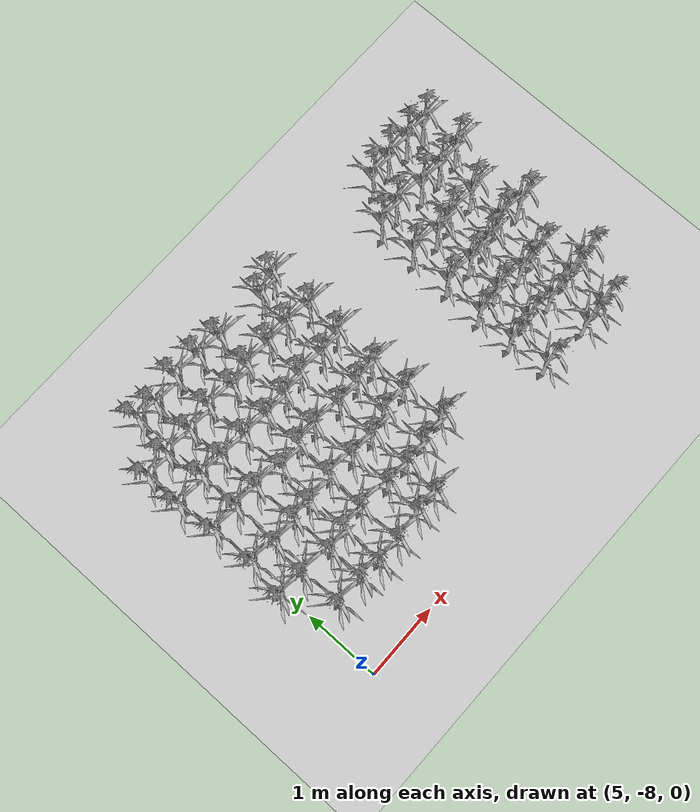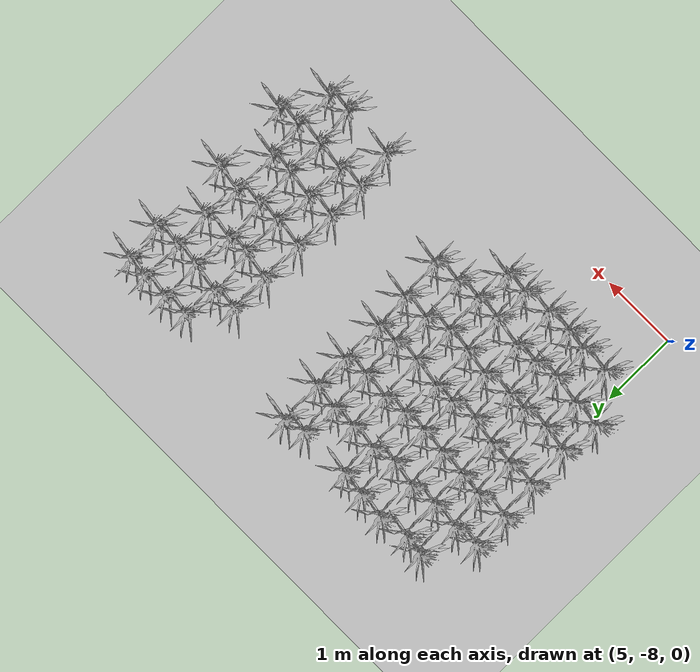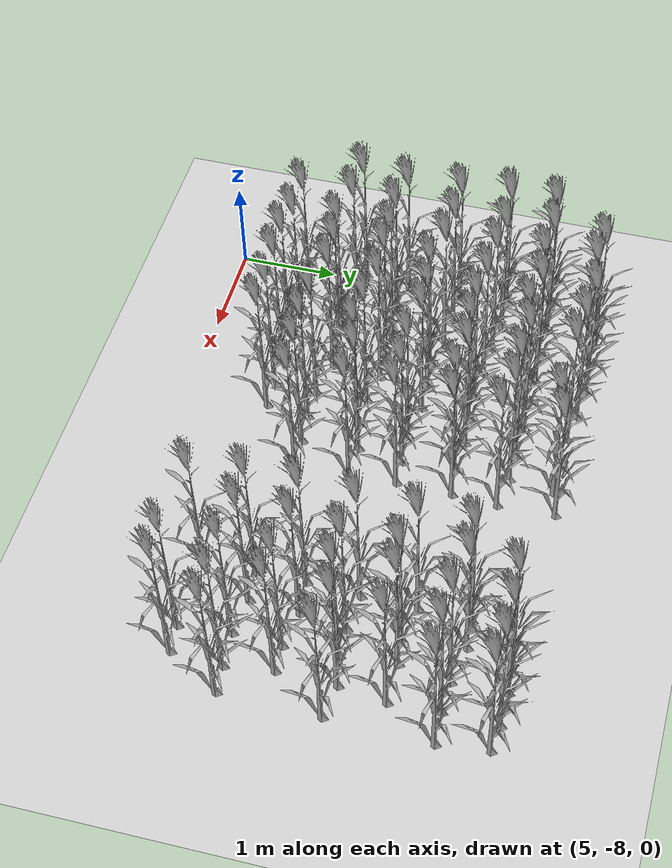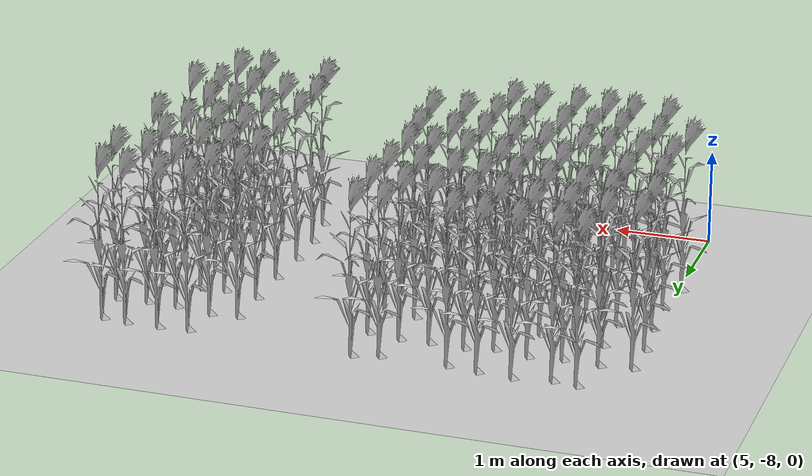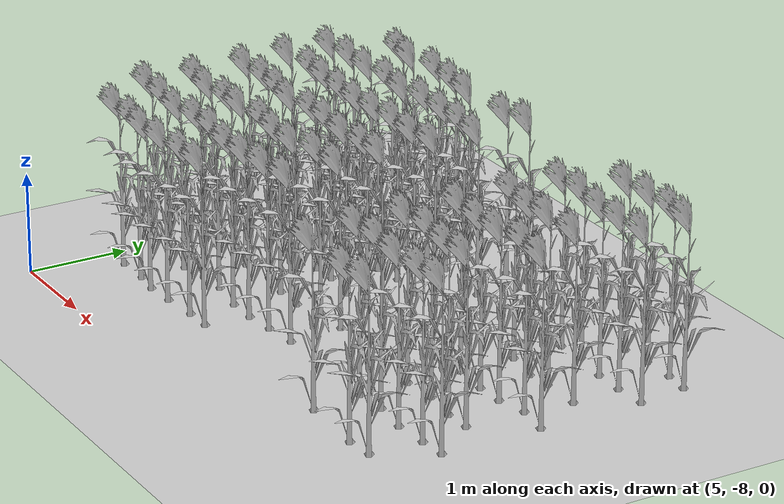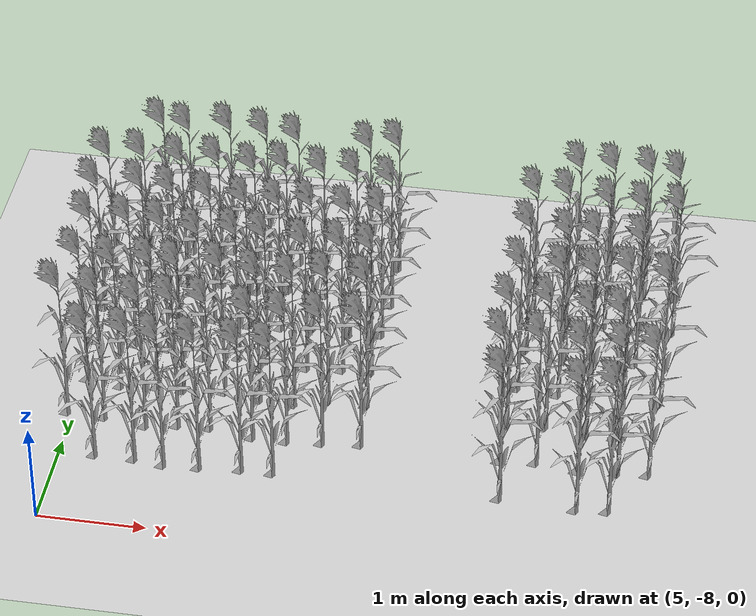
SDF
<sdf version="1.7">
 <world name="farmland_world">
  <model name="ground_plane">
   <static>1</static>
   <link name="link">
    <collision name="collision">
     <geometry><plane><normal>0 0 1</normal><size>40.0 40.0</size></plane></geometry>
     <surface><friction><ode><mu>100</mu><mu2>50</mu2></ode></friction></surface>
    </collision>
    <visual name="visual">
     <cast_shadows>0</cast_shadows>
     <geometry><plane><normal>0 0 1</normal><size>40.0 40.0</size></plane></geometry>
     <material>
      <script><uri>file://media/materials/scripts/gazebo.material</uri><name>Gazebo/Grey</name></script>
     </material>
    </visual>
   </link>
  </model>
  <model name="tree_3_5">
   <static>1</static>
   <link name="link">
    <collision name="collision">
     <geometry><mesh><uri>model://Corn_low_poly/corn.obj</uri><scale>1 1 1</scale></mesh></geometry>
     <surface><friction><ode><mu>100</mu><mu2>50</mu2></ode></friction></surface>
    </collision>
    <visual name="visual">
     <geometry><mesh><uri>model://Corn_low_poly/corn.obj</uri><scale>1 1 1</scale></mesh></geometry>
    </visual>
   </link>
   <pose>4.96478347856773 -4.622246634925939 0 0 0 0</pose>
  </model>
  <model name="tree_3_6">
   <static>1</static>
   <link name="link">
    <collision name="collision">
     <geometry><mesh><uri>model://Corn_low_poly/corn.obj</uri><scale>1 1 1</scale></mesh></geometry>
     <surface><friction><ode><mu>100</mu><mu2>50</mu2></ode></friction></surface>
    </collision>
    <visual name="visual">
     <geometry><mesh><uri>model://Corn_low_poly/corn.obj</uri><scale>1 1 1</scale></mesh></geometry>
    </visual>
   </link>
   <pose>4.961641942109839 -5.090951131364213 0 0 0 0</pose>
  </model>
  <model name="tree_3_7">
   <static>1</static>
   <link name="link">
    <collision name="collision">
     <geometry><mesh><uri>model://Corn_low_poly/corn.obj</uri><scale>1 1 1</scale></mesh></geometry>
     <surface><friction><ode><mu>100</mu><mu2>50</mu2></ode></friction></surface>
    </collision>
    <visual name="visual">
     <geometry><mesh><uri>model://Corn_low_poly/corn.obj</uri><scale>1 1 1</scale></mesh></geometry>
    </visual>
   </link>
   <pose>5.0152718283395235 -5.58843021371626 0 0 0 0</pose>
  </model>
  <model name="tree_3_8">
   <static>1</static>
   <link name="link">
    <collision name="collision">
     <geometry><mesh><uri>model://Corn_low_poly/corn.obj</uri><scale>1 1 1</scale></mesh></geometry>
     <surface><friction><ode><mu>100</mu><mu2>50</mu2></ode></friction></surface>
    </collision>
    <visual name="visual">
     <geometry><mesh><uri>model://Corn_low_poly/corn.obj</uri><scale>1 1 1</scale></mesh></geometry>
    </visual>
   </link>
   <pose>5.041964058183998 -6.136542642182349 0 0 0 0</pose>
  </model>
  <model name="tree_3_9">
   <static>1</static>
   <link name="link">
    <collision name="collision">
     <geometry><mesh><uri>model://Corn_low_poly/corn.obj</uri><scale>1 1 1</scale></mesh></geometry>
     <surface><friction><ode><mu>100</mu><mu2>50</mu2></ode></friction></surface>
    </collision>
    <visual name="visual">
     <geometry><mesh><uri>model://Corn_low_poly/corn.obj</uri><scale>1 1 1</scale></mesh></geometry>
    </visual>
   </link>
   <pose>4.97206561770359 -6.618239836818356 0 0 0 0</pose>
  </model>
  <model name="tree_3_34">
   <static>1</static>
   <link name="link">
    <collision name="collision">
     <geometry><mesh><uri>model://Corn_low_poly/corn.obj</uri><scale>1 1 1</scale></mesh></geometry>
     <surface><friction><ode><mu>100</mu><mu2>50</mu2></ode></friction></surface>
    </collision>
    <visual name="visual">
     <geometry><mesh><uri>model://Corn_low_poly/corn.obj</uri><scale>1 1 1</scale></mesh></geometry>
    </visual>
   </link>
   <pose>5.367690867788337 -4.067806691025668 0 0 0 0</pose>
  </model>
  <model name="tree_3_35">
   <static>1</static>
   <link name="link">
    <collision name="collision">
     <geometry><mesh><uri>model://Corn_low_poly/corn.obj</uri><scale>1 1 1</scale></mesh></geometry>
     <surface><friction><ode><mu>100</mu><mu2>50</mu2></ode></friction></surface>
    </collision>
    <visual name="visual">
     <geometry><mesh><uri>model://Corn_low_poly/corn.obj</uri><scale>1 1 1</scale></mesh></geometry>
    </visual>
   </link>
   <pose>5.2911021994150635 -4.586772521691771 0 0 0 0</pose>
  </model>
  <model name="tree_3_36">
   <static>1</static>
   <link name="link">
    <collision name="collision">
     <geometry><mesh><uri>model://Corn_low_poly/corn.obj</uri><scale>1 1 1</scale></mesh></geometry>
     <surface><friction><ode><mu>100</mu><mu2>50</mu2></ode></friction></surface>
    </collision>
    <visual name="visual">
     <geometry><mesh><uri>model://Corn_low_poly/corn.obj</uri><scale>1 1 1</scale></mesh></geometry>
    </visual>
   </link>
   <pose>5.377014682288951 -5.054176357652684 0 0 0 0</pose>
  </model>
  <model name="tree_3_37">
   <static>1</static>
   <link name="link">
    <collision name="collision">
     <geometry><mesh><uri>model://Corn_low_poly/corn.obj</uri><scale>1 1 1</scale></mesh></geometry>
     <surface><friction><ode><mu>100</mu><mu2>50</mu2></ode></friction></surface>
    </collision>
    <visual name="visual">
     <geometry><mesh><uri>model://Corn_low_poly/corn.obj</uri><scale>1 1 1</scale></mesh></geometry>
    </visual>
   </link>
   <pose>5.372666027742325 -5.576204688433633 0 0 0 0</pose>
  </model>
  <model name="tree_3_38">
   <static>1</static>
   <link name="link">
    <collision name="collision">
     <geometry><mesh><uri>model://Corn_low_poly/corn.obj</uri><scale>1 1 1</scale></mesh></geometry>
     <surface><friction><ode><mu>100</mu><mu2>50</mu2></ode></friction></surface>
    </collision>
    <visual name="visual">
     <geometry><mesh><uri>model://Corn_low_poly/corn.obj</uri><scale>1 1 1</scale></mesh></geometry>
    </visual>
   </link>
   <pose>5.371017712015988 -6.186621657210149 0 0 0 0</pose>
  </model>
  <model name="tree_3_39">
   <static>1</static>
   <link name="link">
    <collision name="collision">
     <geometry><mesh><uri>model://Corn_low_poly/corn.obj</uri><scale>1 1 1</scale></mesh></geometry>
     <surface><friction><ode><mu>100</mu><mu2>50</mu2></ode></friction></surface>
    </collision>
    <visual name="visual">
     <geometry><mesh><uri>model://Corn_low_poly/corn.obj</uri><scale>1 1 1</scale></mesh></geometry>
    </visual>
   </link>
   <pose>5.322694249160785 -6.636999667376503 0 0 0 0</pose>
  </model>
  <model name="tree_3_40">
   <static>1</static>
   <link name="link">
    <collision name="collision">
     <geometry><mesh><uri>model://Corn_low_poly/corn.obj</uri><scale>1 1 1</scale></mesh></geometry>
     <surface><friction><ode><mu>100</mu><mu2>50</mu2></ode></friction></surface>
    </collision>
    <visual name="visual">
     <geometry><mesh><uri>model://Corn_low_poly/corn.obj</uri><scale>1 1 1</scale></mesh></geometry>
    </visual>
   </link>
   <pose>5.351561187208787 -7.151336102312782 0 0 0 0</pose>
  </model>
  <model name="tree_3_64">
   <static>1</static>
   <link name="link">
    <collision name="collision">
     <geometry><mesh><uri>model://Corn_low_poly/corn.obj</uri><scale>1 1 1</scale></mesh></geometry>
     <surface><friction><ode><mu>100</mu><mu2>50</mu2></ode></friction></surface>
    </collision>
    <visual name="visual">
     <geometry><mesh><uri>model://Corn_low_poly/corn.obj</uri><scale>1 1 1</scale></mesh></geometry>
    </visual>
   </link>
   <pose>5.620712537641283 -4.104439684190353 0 0 0 0</pose>
  </model>
  <model name="tree_3_65">
   <static>1</static>
   <link name="link">
    <collision name="collision">
     <geometry><mesh><uri>model://Corn_low_poly/corn.obj</uri><scale>1 1 1</scale></mesh></geometry>
     <surface><friction><ode><mu>100</mu><mu2>50</mu2></ode></friction></surface>
    </collision>
    <visual name="visual">
     <geometry><mesh><uri>model://Corn_low_poly/corn.obj</uri><scale>1 1 1</scale></mesh></geometry>
    </visual>
   </link>
   <pose>5.6592278013899975 -4.606465763218794 0 0 0 0</pose>
  </model>
  <model name="tree_3_66">
   <static>1</static>
   <link name="link">
    <collision name="collision">
     <geometry><mesh><uri>model://Corn_low_poly/corn.obj</uri><scale>1 1 1</scale></mesh></geometry>
     <surface><friction><ode><mu>100</mu><mu2>50</mu2></ode></friction></surface>
    </collision>
    <visual name="visual">
     <geometry><mesh><uri>model://Corn_low_poly/corn.obj</uri><scale>1 1 1</scale></mesh></geometry>
    </visual>
   </link>
   <pose>5.676920389082341 -5.086667481941574 0 0 0 0</pose>
  </model>
  <model name="tree_3_67">
   <static>1</static>
   <link name="link">
    <collision name="collision">
     <geometry><mesh><uri>model://Corn_low_poly/corn.obj</uri><scale>1 1 1</scale></mesh></geometry>
     <surface><friction><ode><mu>100</mu><mu2>50</mu2></ode></friction></surface>
    </collision>
    <visual name="visual">
     <geometry><mesh><uri>model://Corn_low_poly/corn.obj</uri><scale>1 1 1</scale></mesh></geometry>
    </visual>
   </link>
   <pose>5.692409963613252 -5.596808796969715 0 0 0 0</pose>
  </model>
  <model name="tree_3_68">
   <static>1</static>
   <link name="link">
    <collision name="collision">
     <geometry><mesh><uri>model://Corn_low_poly/corn.obj</uri><scale>1 1 1</scale></mesh></geometry>
     <surface><friction><ode><mu>100</mu><mu2>50</mu2></ode></friction></surface>
    </collision>
    <visual name="visual">
     <geometry><mesh><uri>model://Corn_low_poly/corn.obj</uri><scale>1 1 1</scale></mesh></geometry>
    </visual>
   </link>
   <pose>5.7088565378930705 -6.15106637350822 0 0 0 0</pose>
  </model>
  <model name="tree_3_69">
   <static>1</static>
   <link name="link">
    <collision name="collision">
     <geometry><mesh><uri>model://Corn_low_poly/corn.obj</uri><scale>1 1 1</scale></mesh></geometry>
     <surface><friction><ode><mu>100</mu><mu2>50</mu2></ode></friction></surface>
    </collision>
    <visual name="visual">
     <geometry><mesh><uri>model://Corn_low_poly/corn.obj</uri><scale>1 1 1</scale></mesh></geometry>
    </visual>
   </link>
   <pose>5.718844700605121 -6.695372496140132 0 0 0 0</pose>
  </model>
  <model name="tree_3_70">
   <static>1</static>
   <link name="link">
    <collision name="collision">
     <geometry><mesh><uri>model://Corn_low_poly/corn.obj</uri><scale>1 1 1</scale></mesh></geometry>
     <surface><friction><ode><mu>100</mu><mu2>50</mu2></ode></friction></surface>
    </collision>
    <visual name="visual">
     <geometry><mesh><uri>model://Corn_low_poly/corn.obj</uri><scale>1 1 1</scale></mesh></geometry>
    </visual>
   </link>
   <pose>5.716637793886064 -7.149605480177281 0 0 0 0</pose>
  </model>
  <model name="tree_3_94">
   <static>1</static>
   <link name="link">
    <collision name="collision">
     <geometry><mesh><uri>model://Corn_low_poly/corn.obj</uri><scale>1 1 1</scale></mesh></geometry>
     <surface><friction><ode><mu>100</mu><mu2>50</mu2></ode></friction></surface>
    </collision>
    <visual name="visual">
     <geometry><mesh><uri>model://Corn_low_poly/corn.obj</uri><scale>1 1 1</scale></mesh></geometry>
    </visual>
   </link>
   <pose>6.007316378514963 -4.042235877959634 0 0 0 0</pose>
  </model>
  <model name="tree_3_95">
   <static>1</static>
   <link name="link">
    <collision name="collision">
     <geometry><mesh><uri>model://Corn_low_poly/corn.obj</uri><scale>1 1 1</scale></mesh></geometry>
     <surface><friction><ode><mu>100</mu><mu2>50</mu2></ode></friction></surface>
    </collision>
    <visual name="visual">
     <geometry><mesh><uri>model://Corn_low_poly/corn.obj</uri><scale>1 1 1</scale></mesh></geometry>
    </visual>
   </link>
   <pose>6.003213243046174 -4.566844173403588 0 0 0 0</pose>
  </model>
  <model name="tree_3_96">
   <static>1</static>
   <link name="link">
    <collision name="collision">
     <geometry><mesh><uri>model://Corn_low_poly/corn.obj</uri><scale>1 1 1</scale></mesh></geometry>
     <surface><friction><ode><mu>100</mu><mu2>50</mu2></ode></friction></surface>
    </collision>
    <visual name="visual">
     <geometry><mesh><uri>model://Corn_low_poly/corn.obj</uri><scale>1 1 1</scale></mesh></geometry>
    </visual>
   </link>
   <pose>6.0324868574844475 -5.104224742017375 0 0 0 0</pose>
  </model>
  <model name="tree_3_97">
   <static>1</static>
   <link name="link">
    <collision name="collision">
     <geometry><mesh><uri>model://Corn_low_poly/corn.obj</uri><scale>1 1 1</scale></mesh></geometry>
     <surface><friction><ode><mu>100</mu><mu2>50</mu2></ode></friction></surface>
    </collision>
    <visual name="visual">
     <geometry><mesh><uri>model://Corn_low_poly/corn.obj</uri><scale>1 1 1</scale></mesh></geometry>
    </visual>
   </link>
   <pose>6.038358297498675 -5.669083318530954 0 0 0 0</pose>
  </model>
  <model name="tree_3_98">
   <static>1</static>
   <link name="link">
    <collision name="collision">
     <geometry><mesh><uri>model://Corn_low_poly/corn.obj</uri><scale>1 1 1</scale></mesh></geometry>
     <surface><friction><ode><mu>100</mu><mu2>50</mu2></ode></friction></surface>
    </collision>
    <visual name="visual">
     <geometry><mesh><uri>model://Corn_low_poly/corn.obj</uri><scale>1 1 1</scale></mesh></geometry>
    </visual>
   </link>
   <pose>5.954769876000992 -6.156131510920924 0 0 0 0</pose>
  </model>
  <model name="tree_3_99">
   <static>1</static>
   <link name="link">
    <collision name="collision">
     <geometry><mesh><uri>model://Corn_low_poly/corn.obj</uri><scale>1 1 1</scale></mesh></geometry>
     <surface><friction><ode><mu>100</mu><mu2>50</mu2></ode></friction></surface>
    </collision>
    <visual name="visual">
     <geometry><mesh><uri>model://Corn_low_poly/corn.obj</uri><scale>1 1 1</scale></mesh></geometry>
    </visual>
   </link>
   <pose>6.0086960289440965 -6.640402372534143 0 0 0 0</pose>
  </model>
  <model name="tree_3_100">
   <static>1</static>
   <link name="link">
    <collision name="collision">
     <geometry><mesh><uri>model://Corn_low_poly/corn.obj</uri><scale>1 1 1</scale></mesh></geometry>
     <surface><friction><ode><mu>100</mu><mu2>50</mu2></ode></friction></surface>
    </collision>
    <visual name="visual">
     <geometry><mesh><uri>model://Corn_low_poly/corn.obj</uri><scale>1 1 1</scale></mesh></geometry>
    </visual>
   </link>
   <pose>5.990440397539929 -7.186438301888607 0 0 0 0</pose>
  </model>
  <model name="tree_3_124">
   <static>1</static>
   <link name="link">
    <collision name="collision">
     <geometry><mesh><uri>model://Corn_low_poly/corn.obj</uri><scale>1 1 1</scale></mesh></geometry>
     <surface><friction><ode><mu>100</mu><mu2>50</mu2></ode></friction></surface>
    </collision>
    <visual name="visual">
     <geometry><mesh><uri>model://Corn_low_poly/corn.obj</uri><scale>1 1 1</scale></mesh></geometry>
    </visual>
   </link>
   <pose>6.364548829348988 -4.072993630111955 0 0 0 0</pose>
  </model>
  <model name="tree_3_125">
   <static>1</static>
   <link name="link">
    <collision name="collision">
     <geometry><mesh><uri>model://Corn_low_poly/corn.obj</uri><scale>1 1 1</scale></mesh></geometry>
     <surface><friction><ode><mu>100</mu><mu2>50</mu2></ode></friction></surface>
    </collision>
    <visual name="visual">
     <geometry><mesh><uri>model://Corn_low_poly/corn.obj</uri><scale>1 1 1</scale></mesh></geometry>
    </visual>
   </link>
   <pose>6.355291025091278 -4.624657628135386 0 0 0 0</pose>
  </model>
  <model name="tree_3_126">
   <static>1</static>
   <link name="link">
    <collision name="collision">
     <geometry><mesh><uri>model://Corn_low_poly/corn.obj</uri><scale>1 1 1</scale></mesh></geometry>
     <surface><friction><ode><mu>100</mu><mu2>50</mu2></ode></friction></surface>
    </collision>
    <visual name="visual">
     <geometry><mesh><uri>model://Corn_low_poly/corn.obj</uri><scale>1 1 1</scale></mesh></geometry>
    </visual>
   </link>
   <pose>6.372262241199812 -5.133742422515036 0 0 0 0</pose>
  </model>
  <model name="tree_3_127">
   <static>1</static>
   <link name="link">
    <collision name="collision">
     <geometry><mesh><uri>model://Corn_low_poly/corn.obj</uri><scale>1 1 1</scale></mesh></geometry>
     <surface><friction><ode><mu>100</mu><mu2>50</mu2></ode></friction></surface>
    </collision>
    <visual name="visual">
     <geometry><mesh><uri>model://Corn_low_poly/corn.obj</uri><scale>1 1 1</scale></mesh></geometry>
    </visual>
   </link>
   <pose>6.373834063173654 -5.613333382981641 0 0 0 0</pose>
  </model>
  <model name="tree_3_128">
   <static>1</static>
   <link name="link">
    <collision name="collision">
     <geometry><mesh><uri>model://Corn_low_poly/corn.obj</uri><scale>1 1 1</scale></mesh></geometry>
     <surface><friction><ode><mu>100</mu><mu2>50</mu2></ode></friction></surface>
    </collision>
    <visual name="visual">
     <geometry><mesh><uri>model://Corn_low_poly/corn.obj</uri><scale>1 1 1</scale></mesh></geometry>
    </visual>
   </link>
   <pose>6.339459191038118 -6.1157532081406885 0 0 0 0</pose>
  </model>
  <model name="tree_3_129">
   <static>1</static>
   <link name="link">
    <collision name="collision">
     <geometry><mesh><uri>model://Corn_low_poly/corn.obj</uri><scale>1 1 1</scale></mesh></geometry>
     <surface><friction><ode><mu>100</mu><mu2>50</mu2></ode></friction></surface>
    </collision>
    <visual name="visual">
     <geometry><mesh><uri>model://Corn_low_poly/corn.obj</uri><scale>1 1 1</scale></mesh></geometry>
    </visual>
   </link>
   <pose>6.306803797436285 -6.625570666592988 0 0 0 0</pose>
  </model>
  <model name="tree_3_130">
   <static>1</static>
   <link name="link">
    <collision name="collision">
     <geometry><mesh><uri>model://Corn_low_poly/corn.obj</uri><scale>1 1 1</scale></mesh></geometry>
     <surface><friction><ode><mu>100</mu><mu2>50</mu2></ode></friction></surface>
    </collision>
    <visual name="visual">
     <geometry><mesh><uri>model://Corn_low_poly/corn.obj</uri><scale>1 1 1</scale></mesh></geometry>
    </visual>
   </link>
   <pose>6.313980239410021 -7.169878907647459 0 0 0 0</pose>
  </model>
  <model name="tree_3_154">
   <static>1</static>
   <link name="link">
    <collision name="collision">
     <geometry><mesh><uri>model://Corn_low_poly/corn.obj</uri><scale>1 1 1</scale></mesh></geometry>
     <surface><friction><ode><mu>100</mu><mu2>50</mu2></ode></friction></surface>
    </collision>
    <visual name="visual">
     <geometry><mesh><uri>model://Corn_low_poly/corn.obj</uri><scale>1 1 1</scale></mesh></geometry>
    </visual>
   </link>
   <pose>6.678967247461944 -4.111494843390279 0 0 0 0</pose>
  </model>
  <model name="tree_3_155">
   <static>1</static>
   <link name="link">
    <collision name="collision">
     <geometry><mesh><uri>model://Corn_low_poly/corn.obj</uri><scale>1 1 1</scale></mesh></geometry>
     <surface><friction><ode><mu>100</mu><mu2>50</mu2></ode></friction></surface>
    </collision>
    <visual name="visual">
     <geometry><mesh><uri>model://Corn_low_poly/corn.obj</uri><scale>1 1 1</scale></mesh></geometry>
    </visual>
   </link>
   <pose>6.64340420718261 -4.556280616067659 0 0 0 0</pose>
  </model>
  <model name="tree_3_156">
   <static>1</static>
   <link name="link">
    <collision name="collision">
     <geometry><mesh><uri>model://Corn_low_poly/corn.obj</uri><scale>1 1 1</scale></mesh></geometry>
     <surface><friction><ode><mu>100</mu><mu2>50</mu2></ode></friction></surface>
    </collision>
    <visual name="visual">
     <geometry><mesh><uri>model://Corn_low_poly/corn.obj</uri><scale>1 1 1</scale></mesh></geometry>
    </visual>
   </link>
   <pose>6.679794083040925 -5.120001455620349 0 0 0 0</pose>
  </model>
  <model name="tree_3_157">
   <static>1</static>
   <link name="link">
    <collision name="collision">
     <geometry><mesh><uri>model://Corn_low_poly/corn.obj</uri><scale>1 1 1</scale></mesh></geometry>
     <surface><friction><ode><mu>100</mu><mu2>50</mu2></ode></friction></surface>
    </collision>
    <visual name="visual">
     <geometry><mesh><uri>model://Corn_low_poly/corn.obj</uri><scale>1 1 1</scale></mesh></geometry>
    </visual>
   </link>
   <pose>6.640848302028808 -5.608443564762951 0 0 0 0</pose>
  </model>
  <model name="tree_3_158">
   <static>1</static>
   <link name="link">
    <collision name="collision">
     <geometry><mesh><uri>model://Corn_low_poly/corn.obj</uri><scale>1 1 1</scale></mesh></geometry>
     <surface><friction><ode><mu>100</mu><mu2>50</mu2></ode></friction></surface>
    </collision>
    <visual name="visual">
     <geometry><mesh><uri>model://Corn_low_poly/corn.obj</uri><scale>1 1 1</scale></mesh></geometry>
    </visual>
   </link>
   <pose>6.676350154169229 -6.172603780081469 0 0 0 0</pose>
  </model>
  <model name="tree_3_159">
   <static>1</static>
   <link name="link">
    <collision name="collision">
     <geometry><mesh><uri>model://Corn_low_poly/corn.obj</uri><scale>1 1 1</scale></mesh></geometry>
     <surface><friction><ode><mu>100</mu><mu2>50</mu2></ode></friction></surface>
    </collision>
    <visual name="visual">
     <geometry><mesh><uri>model://Corn_low_poly/corn.obj</uri><scale>1 1 1</scale></mesh></geometry>
    </visual>
   </link>
   <pose>6.711187290557367 -6.690827737469852 0 0 0 0</pose>
  </model>
  <model name="tree_3_160">
   <static>1</static>
   <link name="link">
    <collision name="collision">
     <geometry><mesh><uri>model://Corn_low_poly/corn.obj</uri><scale>1 1 1</scale></mesh></geometry>
     <surface><friction><ode><mu>100</mu><mu2>50</mu2></ode></friction></surface>
    </collision>
    <visual name="visual">
     <geometry><mesh><uri>model://Corn_low_poly/corn.obj</uri><scale>1 1 1</scale></mesh></geometry>
    </visual>
   </link>
   <pose>6.692627238914097 -7.135741242186972 0 0 0 0</pose>
  </model>
  <model name="tree_3_185">
   <static>1</static>
   <link name="link">
    <collision name="collision">
     <geometry><mesh><uri>model://Corn_low_poly/corn.obj</uri><scale>1 1 1</scale></mesh></geometry>
     <surface><friction><ode><mu>100</mu><mu2>50</mu2></ode></friction></surface>
    </collision>
    <visual name="visual">
     <geometry><mesh><uri>model://Corn_low_poly/corn.obj</uri><scale>1 1 1</scale></mesh></geometry>
    </visual>
   </link>
   <pose>7.0052373869968605 -4.5700732096168695 0 0 0 0</pose>
  </model>
  <model name="tree_3_186">
   <static>1</static>
   <link name="link">
    <collision name="collision">
     <geometry><mesh><uri>model://Corn_low_poly/corn.obj</uri><scale>1 1 1</scale></mesh></geometry>
     <surface><friction><ode><mu>100</mu><mu2>50</mu2></ode></friction></surface>
    </collision>
    <visual name="visual">
     <geometry><mesh><uri>model://Corn_low_poly/corn.obj</uri><scale>1 1 1</scale></mesh></geometry>
    </visual>
   </link>
   <pose>6.977160724302333 -5.0826340610701335 0 0 0 0</pose>
  </model>
  <model name="tree_3_187">
   <static>1</static>
   <link name="link">
    <collision name="collision">
     <geometry><mesh><uri>model://Corn_low_poly/corn.obj</uri><scale>1 1 1</scale></mesh></geometry>
     <surface><friction><ode><mu>100</mu><mu2>50</mu2></ode></friction></surface>
    </collision>
    <visual name="visual">
     <geometry><mesh><uri>model://Corn_low_poly/corn.obj</uri><scale>1 1 1</scale></mesh></geometry>
    </visual>
   </link>
   <pose>7.023811327861597 -5.658959704684649 0 0 0 0</pose>
  </model>
  <model name="tree_3_188">
   <static>1</static>
   <link name="link">
    <collision name="collision">
     <geometry><mesh><uri>model://Corn_low_poly/corn.obj</uri><scale>1 1 1</scale></mesh></geometry>
     <surface><friction><ode><mu>100</mu><mu2>50</mu2></ode></friction></surface>
    </collision>
    <visual name="visual">
     <geometry><mesh><uri>model://Corn_low_poly/corn.obj</uri><scale>1 1 1</scale></mesh></geometry>
    </visual>
   </link>
   <pose>7.001533340455503 -6.181932630836073 0 0 0 0</pose>
  </model>
  <model name="tree_3_189">
   <static>1</static>
   <link name="link">
    <collision name="collision">
     <geometry><mesh><uri>model://Corn_low_poly/corn.obj</uri><scale>1 1 1</scale></mesh></geometry>
     <surface><friction><ode><mu>100</mu><mu2>50</mu2></ode></friction></surface>
    </collision>
    <visual name="visual">
     <geometry><mesh><uri>model://Corn_low_poly/corn.obj</uri><scale>1 1 1</scale></mesh></geometry>
    </visual>
   </link>
   <pose>7.027093976333068 -6.694435872514824 0 0 0 0</pose>
  </model>
  <model name="tree_3_190">
   <static>1</static>
   <link name="link">
    <collision name="collision">
     <geometry><mesh><uri>model://Corn_low_poly/corn.obj</uri><scale>1 1 1</scale></mesh></geometry>
     <surface><friction><ode><mu>100</mu><mu2>50</mu2></ode></friction></surface>
    </collision>
    <visual name="visual">
     <geometry><mesh><uri>model://Corn_low_poly/corn.obj</uri><scale>1 1 1</scale></mesh></geometry>
    </visual>
   </link>
   <pose>6.981239346060276 -7.135841221618749 0 0 0 0</pose>
  </model>
  <model name="tree_3_214">
   <static>1</static>
   <link name="link">
    <collision name="collision">
     <geometry><mesh><uri>model://Corn_low_poly/corn.obj</uri><scale>1 1 1</scale></mesh></geometry>
     <surface><friction><ode><mu>100</mu><mu2>50</mu2></ode></friction></surface>
    </collision>
    <visual name="visual">
     <geometry><mesh><uri>model://Corn_low_poly/corn.obj</uri><scale>1 1 1</scale></mesh></geometry>
    </visual>
   </link>
   <pose>7.368486404065623 -4.1180168366250784 0 0 0 0</pose>
  </model>
  <model name="tree_3_215">
   <static>1</static>
   <link name="link">
    <collision name="collision">
     <geometry><mesh><uri>model://Corn_low_poly/corn.obj</uri><scale>1 1 1</scale></mesh></geometry>
     <surface><friction><ode><mu>100</mu><mu2>50</mu2></ode></friction></surface>
    </collision>
    <visual name="visual">
     <geometry><mesh><uri>model://Corn_low_poly/corn.obj</uri><scale>1 1 1</scale></mesh></geometry>
    </visual>
   </link>
   <pose>7.313234642623192 -4.56357721685865 0 0 0 0</pose>
  </model>
  <model name="tree_3_216">
   <static>1</static>
   <link name="link">
    <collision name="collision">
     <geometry><mesh><uri>model://Corn_low_poly/corn.obj</uri><scale>1 1 1</scale></mesh></geometry>
     <surface><friction><ode><mu>100</mu><mu2>50</mu2></ode></friction></surface>
    </collision>
    <visual name="visual">
     <geometry><mesh><uri>model://Corn_low_poly/corn.obj</uri><scale>1 1 1</scale></mesh></geometry>
    </visual>
   </link>
   <pose>7.332013753542595 -5.11431398666096 0 0 0 0</pose>
  </model>
  <model name="tree_3_217">
   <static>1</static>
   <link name="link">
    <collision name="collision">
     <geometry><mesh><uri>model://Corn_low_poly/corn.obj</uri><scale>1 1 1</scale></mesh></geometry>
     <surface><friction><ode><mu>100</mu><mu2>50</mu2></ode></friction></surface>
    </collision>
    <visual name="visual">
     <geometry><mesh><uri>model://Corn_low_poly/corn.obj</uri><scale>1 1 1</scale></mesh></geometry>
    </visual>
   </link>
   <pose>7.35786656242808 -5.630866796941982 0 0 0 0</pose>
  </model>
  <model name="tree_3_218">
   <static>1</static>
   <link name="link">
    <collision name="collision">
     <geometry><mesh><uri>model://Corn_low_poly/corn.obj</uri><scale>1 1 1</scale></mesh></geometry>
     <surface><friction><ode><mu>100</mu><mu2>50</mu2></ode></friction></surface>
    </collision>
    <visual name="visual">
     <geometry><mesh><uri>model://Corn_low_poly/corn.obj</uri><scale>1 1 1</scale></mesh></geometry>
    </visual>
   </link>
   <pose>7.302126407336682 -6.09394677712751 0 0 0 0</pose>
  </model>
  <model name="tree_3_219">
   <static>1</static>
   <link name="link">
    <collision name="collision">
     <geometry><mesh><uri>model://Corn_low_poly/corn.obj</uri><scale>1 1 1</scale></mesh></geometry>
     <surface><friction><ode><mu>100</mu><mu2>50</mu2></ode></friction></surface>
    </collision>
    <visual name="visual">
     <geometry><mesh><uri>model://Corn_low_poly/corn.obj</uri><scale>1 1 1</scale></mesh></geometry>
    </visual>
   </link>
   <pose>7.346145616137379 -6.664005602230528 0 0 0 0</pose>
  </model>
  <model name="tree_3_244">
   <static>1</static>
   <link name="link">
    <collision name="collision">
     <geometry><mesh><uri>model://Corn_low_poly/corn.obj</uri><scale>1 1 1</scale></mesh></geometry>
     <surface><friction><ode><mu>100</mu><mu2>50</mu2></ode></friction></surface>
    </collision>
    <visual name="visual">
     <geometry><mesh><uri>model://Corn_low_poly/corn.obj</uri><scale>1 1 1</scale></mesh></geometry>
    </visual>
   </link>
   <pose>7.6334302549524935 -4.048331394521958 0 0 0 0</pose>
  </model>
  <model name="tree_3_245">
   <static>1</static>
   <link name="link">
    <collision name="collision">
     <geometry><mesh><uri>model://Corn_low_poly/corn.obj</uri><scale>1 1 1</scale></mesh></geometry>
     <surface><friction><ode><mu>100</mu><mu2>50</mu2></ode></friction></surface>
    </collision>
    <visual name="visual">
     <geometry><mesh><uri>model://Corn_low_poly/corn.obj</uri><scale>1 1 1</scale></mesh></geometry>
    </visual>
   </link>
   <pose>7.653229379976271 -4.615981377198679 0 0 0 0</pose>
  </model>
  <model name="tree_3_246">
   <static>1</static>
   <link name="link">
    <collision name="collision">
     <geometry><mesh><uri>model://Corn_low_poly/corn.obj</uri><scale>1 1 1</scale></mesh></geometry>
     <surface><friction><ode><mu>100</mu><mu2>50</mu2></ode></friction></surface>
    </collision>
    <visual name="visual">
     <geometry><mesh><uri>model://Corn_low_poly/corn.obj</uri><scale>1 1 1</scale></mesh></geometry>
    </visual>
   </link>
   <pose>7.632138836913256 -5.069264379369979 0 0 0 0</pose>
  </model>
  <model name="tree_3_247">
   <static>1</static>
   <link name="link">
    <collision name="collision">
     <geometry><mesh><uri>model://Corn_low_poly/corn.obj</uri><scale>1 1 1</scale></mesh></geometry>
     <surface><friction><ode><mu>100</mu><mu2>50</mu2></ode></friction></surface>
    </collision>
    <visual name="visual">
     <geometry><mesh><uri>model://Corn_low_poly/corn.obj</uri><scale>1 1 1</scale></mesh></geometry>
    </visual>
   </link>
   <pose>7.62589117586299 -5.626322974531135 0 0 0 0</pose>
  </model>
  <model name="tree_3_248">
   <static>1</static>
   <link name="link">
    <collision name="collision">
     <geometry><mesh><uri>model://Corn_low_poly/corn.obj</uri><scale>1 1 1</scale></mesh></geometry>
     <surface><friction><ode><mu>100</mu><mu2>50</mu2></ode></friction></surface>
    </collision>
    <visual name="visual">
     <geometry><mesh><uri>model://Corn_low_poly/corn.obj</uri><scale>1 1 1</scale></mesh></geometry>
    </visual>
   </link>
   <pose>7.663568888635782 -6.090091018901572 0 0 0 0</pose>
  </model>
  <model name="tree_3_249">
   <static>1</static>
   <link name="link">
    <collision name="collision">
     <geometry><mesh><uri>model://Corn_low_poly/corn.obj</uri><scale>1 1 1</scale></mesh></geometry>
     <surface><friction><ode><mu>100</mu><mu2>50</mu2></ode></friction></surface>
    </collision>
    <visual name="visual">
     <geometry><mesh><uri>model://Corn_low_poly/corn.obj</uri><scale>1 1 1</scale></mesh></geometry>
    </visual>
   </link>
   <pose>7.697201304287141 -6.628992214974551 0 0 0 0</pose>
  </model>
  <model name="tree_3_275">
   <static>1</static>
   <link name="link">
    <collision name="collision">
     <geometry><mesh><uri>model://Corn_low_poly/corn.obj</uri><scale>1 1 1</scale></mesh></geometry>
     <surface><friction><ode><mu>100</mu><mu2>50</mu2></ode></friction></surface>
    </collision>
    <visual name="visual">
     <geometry><mesh><uri>model://Corn_low_poly/corn.obj</uri><scale>1 1 1</scale></mesh></geometry>
    </visual>
   </link>
   <pose>9.009373125727821 -4.560646856136315 0 0 0 0</pose>
  </model>
  <model name="tree_3_276">
   <static>1</static>
   <link name="link">
    <collision name="collision">
     <geometry><mesh><uri>model://Corn_low_poly/corn.obj</uri><scale>1 1 1</scale></mesh></geometry>
     <surface><friction><ode><mu>100</mu><mu2>50</mu2></ode></friction></surface>
    </collision>
    <visual name="visual">
     <geometry><mesh><uri>model://Corn_low_poly/corn.obj</uri><scale>1 1 1</scale></mesh></geometry>
    </visual>
   </link>
   <pose>9.005295255668853 -5.069386360095034 0 0 0 0</pose>
  </model>
  <model name="tree_3_277">
   <static>1</static>
   <link name="link">
    <collision name="collision">
     <geometry><mesh><uri>model://Corn_low_poly/corn.obj</uri><scale>1 1 1</scale></mesh></geometry>
     <surface><friction><ode><mu>100</mu><mu2>50</mu2></ode></friction></surface>
    </collision>
    <visual name="visual">
     <geometry><mesh><uri>model://Corn_low_poly/corn.obj</uri><scale>1 1 1</scale></mesh></geometry>
    </visual>
   </link>
   <pose>8.995974220992762 -5.621863440084708 0 0 0 0</pose>
  </model>
  <model name="tree_3_278">
   <static>1</static>
   <link name="link">
    <collision name="collision">
     <geometry><mesh><uri>model://Corn_low_poly/corn.obj</uri><scale>1 1 1</scale></mesh></geometry>
     <surface><friction><ode><mu>100</mu><mu2>50</mu2></ode></friction></surface>
    </collision>
    <visual name="visual">
     <geometry><mesh><uri>model://Corn_low_poly/corn.obj</uri><scale>1 1 1</scale></mesh></geometry>
    </visual>
   </link>
   <pose>8.966314682415327 -6.153271419108417 0 0 0 0</pose>
  </model>
  <model name="tree_3_279">
   <static>1</static>
   <link name="link">
    <collision name="collision">
     <geometry><mesh><uri>model://Corn_low_poly/corn.obj</uri><scale>1 1 1</scale></mesh></geometry>
     <surface><friction><ode><mu>100</mu><mu2>50</mu2></ode></friction></surface>
    </collision>
    <visual name="visual">
     <geometry><mesh><uri>model://Corn_low_poly/corn.obj</uri><scale>1 1 1</scale></mesh></geometry>
    </visual>
   </link>
   <pose>8.9682219624438 -6.64173862903016 0 0 0 0</pose>
  </model>
  <model name="tree_3_280">
   <static>1</static>
   <link name="link">
    <collision name="collision">
     <geometry><mesh><uri>model://Corn_low_poly/corn.obj</uri><scale>1 1 1</scale></mesh></geometry>
     <surface><friction><ode><mu>100</mu><mu2>50</mu2></ode></friction></surface>
    </collision>
    <visual name="visual">
     <geometry><mesh><uri>model://Corn_low_poly/corn.obj</uri><scale>1 1 1</scale></mesh></geometry>
    </visual>
   </link>
   <pose>9.027708592277834 -7.136435229044126 0 0 0 0</pose>
  </model>
  <model name="tree_3_304">
   <static>1</static>
   <link name="link">
    <collision name="collision">
     <geometry><mesh><uri>model://Corn_low_poly/corn.obj</uri><scale>1 1 1</scale></mesh></geometry>
     <surface><friction><ode><mu>100</mu><mu2>50</mu2></ode></friction></surface>
    </collision>
    <visual name="visual">
     <geometry><mesh><uri>model://Corn_low_poly/corn.obj</uri><scale>1 1 1</scale></mesh></geometry>
    </visual>
   </link>
   <pose>9.36082101320579 -4.103442241237912 0 0 0 0</pose>
  </model>
  <model name="tree_3_305">
   <static>1</static>
   <link name="link">
    <collision name="collision">
     <geometry><mesh><uri>model://Corn_low_poly/corn.obj</uri><scale>1 1 1</scale></mesh></geometry>
     <surface><friction><ode><mu>100</mu><mu2>50</mu2></ode></friction></surface>
    </collision>
    <visual name="visual">
     <geometry><mesh><uri>model://Corn_low_poly/corn.obj</uri><scale>1 1 1</scale></mesh></geometry>
    </visual>
   </link>
   <pose>9.301912847897373 -4.539157298606542 0 0 0 0</pose>
  </model>
  <model name="tree_3_306">
   <static>1</static>
   <link name="link">
    <collision name="collision">
     <geometry><mesh><uri>model://Corn_low_poly/corn.obj</uri><scale>1 1 1</scale></mesh></geometry>
     <surface><friction><ode><mu>100</mu><mu2>50</mu2></ode></friction></surface>
    </collision>
    <visual name="visual">
     <geometry><mesh><uri>model://Corn_low_poly/corn.obj</uri><scale>1 1 1</scale></mesh></geometry>
    </visual>
   </link>
   <pose>9.372808856654382 -5.134012578621682 0 0 0 0</pose>
  </model>
  <model name="tree_3_307">
   <static>1</static>
   <link name="link">
    <collision name="collision">
     <geometry><mesh><uri>model://Corn_low_poly/corn.obj</uri><scale>1 1 1</scale></mesh></geometry>
     <surface><friction><ode><mu>100</mu><mu2>50</mu2></ode></friction></surface>
    </collision>
    <visual name="visual">
     <geometry><mesh><uri>model://Corn_low_poly/corn.obj</uri><scale>1 1 1</scale></mesh></geometry>
    </visual>
   </link>
   <pose>9.378363747237865 -5.653999651075191 0 0 0 0</pose>
  </model>
  <model name="tree_3_308">
   <static>1</static>
   <link name="link">
    <collision name="collision">
     <geometry><mesh><uri>model://Corn_low_poly/corn.obj</uri><scale>1 1 1</scale></mesh></geometry>
     <surface><friction><ode><mu>100</mu><mu2>50</mu2></ode></friction></surface>
    </collision>
    <visual name="visual">
     <geometry><mesh><uri>model://Corn_low_poly/corn.obj</uri><scale>1 1 1</scale></mesh></geometry>
    </visual>
   </link>
   <pose>9.31626390613026 -6.118442694753003 0 0 0 0</pose>
  </model>
  <model name="tree_3_309">
   <static>1</static>
   <link name="link">
    <collision name="collision">
     <geometry><mesh><uri>model://Corn_low_poly/corn.obj</uri><scale>1 1 1</scale></mesh></geometry>
     <surface><friction><ode><mu>100</mu><mu2>50</mu2></ode></friction></surface>
    </collision>
    <visual name="visual">
     <geometry><mesh><uri>model://Corn_low_poly/corn.obj</uri><scale>1 1 1</scale></mesh></geometry>
    </visual>
   </link>
   <pose>9.292896620185191 -6.614371439240427 0 0 0 0</pose>
  </model>
  <model name="tree_3_334">
   <static>1</static>
   <link name="link">
    <collision name="collision">
     <geometry><mesh><uri>model://Corn_low_poly/corn.obj</uri><scale>1 1 1</scale></mesh></geometry>
     <surface><friction><ode><mu>100</mu><mu2>50</mu2></ode></friction></surface>
    </collision>
    <visual name="visual">
     <geometry><mesh><uri>model://Corn_low_poly/corn.obj</uri><scale>1 1 1</scale></mesh></geometry>
    </visual>
   </link>
   <pose>9.674835460812638 -4.078266826932733 0 0 0 0</pose>
  </model>
  <model name="tree_3_335">
   <static>1</static>
   <link name="link">
    <collision name="collision">
     <geometry><mesh><uri>model://Corn_low_poly/corn.obj</uri><scale>1 1 1</scale></mesh></geometry>
     <surface><friction><ode><mu>100</mu><mu2>50</mu2></ode></friction></surface>
    </collision>
    <visual name="visual">
     <geometry><mesh><uri>model://Corn_low_poly/corn.obj</uri><scale>1 1 1</scale></mesh></geometry>
    </visual>
   </link>
   <pose>9.690117378476096 -4.605312240455988 0 0 0 0</pose>
  </model>
  <model name="tree_3_336">
   <static>1</static>
   <link name="link">
    <collision name="collision">
     <geometry><mesh><uri>model://Corn_low_poly/corn.obj</uri><scale>1 1 1</scale></mesh></geometry>
     <surface><friction><ode><mu>100</mu><mu2>50</mu2></ode></friction></surface>
    </collision>
    <visual name="visual">
     <geometry><mesh><uri>model://Corn_low_poly/corn.obj</uri><scale>1 1 1</scale></mesh></geometry>
    </visual>
   </link>
   <pose>9.621260197977804 -5.106102047814878 0 0 0 0</pose>
  </model>
  <model name="tree_3_337">
   <static>1</static>
   <link name="link">
    <collision name="collision">
     <geometry><mesh><uri>model://Corn_low_poly/corn.obj</uri><scale>1 1 1</scale></mesh></geometry>
     <surface><friction><ode><mu>100</mu><mu2>50</mu2></ode></friction></surface>
    </collision>
    <visual name="visual">
     <geometry><mesh><uri>model://Corn_low_poly/corn.obj</uri><scale>1 1 1</scale></mesh></geometry>
    </visual>
   </link>
   <pose>9.67226625469792 -5.644732619885703 0 0 0 0</pose>
  </model>
  <model name="tree_3_338">
   <static>1</static>
   <link name="link">
    <collision name="collision">
     <geometry><mesh><uri>model://Corn_low_poly/corn.obj</uri><scale>1 1 1</scale></mesh></geometry>
     <surface><friction><ode><mu>100</mu><mu2>50</mu2></ode></friction></surface>
    </collision>
    <visual name="visual">
     <geometry><mesh><uri>model://Corn_low_poly/corn.obj</uri><scale>1 1 1</scale></mesh></geometry>
    </visual>
   </link>
   <pose>9.692672387265672 -6.175421449627631 0 0 0 0</pose>
  </model>
  <model name="tree_3_339">
   <static>1</static>
   <link name="link">
    <collision name="collision">
     <geometry><mesh><uri>model://Corn_low_poly/corn.obj</uri><scale>1 1 1</scale></mesh></geometry>
     <surface><friction><ode><mu>100</mu><mu2>50</mu2></ode></friction></surface>
    </collision>
    <visual name="visual">
     <geometry><mesh><uri>model://Corn_low_poly/corn.obj</uri><scale>1 1 1</scale></mesh></geometry>
    </visual>
   </link>
   <pose>9.67194308524521 -6.660593660331509 0 0 0 0</pose>
  </model>
  <model name="tree_3_340">
   <static>1</static>
   <link name="link">
    <collision name="collision">
     <geometry><mesh><uri>model://Corn_low_poly/corn.obj</uri><scale>1 1 1</scale></mesh></geometry>
     <surface><friction><ode><mu>100</mu><mu2>50</mu2></ode></friction></surface>
    </collision>
    <visual name="visual">
     <geometry><mesh><uri>model://Corn_low_poly/corn.obj</uri><scale>1 1 1</scale></mesh></geometry>
    </visual>
   </link>
   <pose>9.716356232755393 -7.17246685643608 0 0 0 0</pose>
  </model>
  <model name="tree_3_364">
   <static>1</static>
   <link name="link">
    <collision name="collision">
     <geometry><mesh><uri>model://Corn_low_poly/corn.obj</uri><scale>1 1 1</scale></mesh></geometry>
     <surface><friction><ode><mu>100</mu><mu2>50</mu2></ode></friction></surface>
    </collision>
    <visual name="visual">
     <geometry><mesh><uri>model://Corn_low_poly/corn.obj</uri><scale>1 1 1</scale></mesh></geometry>
    </visual>
   </link>
   <pose>10.017145870378233 -4.076663681291556 0 0 0 0</pose>
  </model>
  <model name="tree_3_365">
   <static>1</static>
   <link name="link">
    <collision name="collision">
     <geometry><mesh><uri>model://Corn_low_poly/corn.obj</uri><scale>1 1 1</scale></mesh></geometry>
     <surface><friction><ode><mu>100</mu><mu2>50</mu2></ode></friction></surface>
    </collision>
    <visual name="visual">
     <geometry><mesh><uri>model://Corn_low_poly/corn.obj</uri><scale>1 1 1</scale></mesh></geometry>
    </visual>
   </link>
   <pose>10.009119126398797 -4.614863657140513 0 0 0 0</pose>
  </model>
  <model name="tree_3_366">
   <static>1</static>
   <link name="link">
    <collision name="collision">
     <geometry><mesh><uri>model://Corn_low_poly/corn.obj</uri><scale>1 1 1</scale></mesh></geometry>
     <surface><friction><ode><mu>100</mu><mu2>50</mu2></ode></friction></surface>
    </collision>
    <visual name="visual">
     <geometry><mesh><uri>model://Corn_low_poly/corn.obj</uri><scale>1 1 1</scale></mesh></geometry>
    </visual>
   </link>
   <pose>10.034495908656373 -5.107039220228331 0 0 0 0</pose>
  </model>
  <model name="tree_3_367">
   <static>1</static>
   <link name="link">
    <collision name="collision">
     <geometry><mesh><uri>model://Corn_low_poly/corn.obj</uri><scale>1 1 1</scale></mesh></geometry>
     <surface><friction><ode><mu>100</mu><mu2>50</mu2></ode></friction></surface>
    </collision>
    <visual name="visual">
     <geometry><mesh><uri>model://Corn_low_poly/corn.obj</uri><scale>1 1 1</scale></mesh></geometry>
    </visual>
   </link>
   <pose>9.974564172827023 -5.575014275582273 0 0 0 0</pose>
  </model>
  <model name="tree_3_368">
   <static>1</static>
   <link name="link">
    <collision name="collision">
     <geometry><mesh><uri>model://Corn_low_poly/corn.obj</uri><scale>1 1 1</scale></mesh></geometry>
     <surface><friction><ode><mu>100</mu><mu2>50</mu2></ode></friction></surface>
    </collision>
    <visual name="visual">
     <geometry><mesh><uri>model://Corn_low_poly/corn.obj</uri><scale>1 1 1</scale></mesh></geometry>
    </visual>
   </link>
   <pose>9.966319268779053 -6.16387071192002 0 0 0 0</pose>
  </model>
  <model name="tree_3_369">
   <static>1</static>
   <link name="link">
    <collision name="collision">
     <geometry><mesh><uri>model://Corn_low_poly/corn.obj</uri><scale>1 1 1</scale></mesh></geometry>
     <surface><friction><ode><mu>100</mu><mu2>50</mu2></ode></friction></surface>
    </collision>
    <visual name="visual">
     <geometry><mesh><uri>model://Corn_low_poly/corn.obj</uri><scale>1 1 1</scale></mesh></geometry>
    </visual>
   </link>
   <pose>10.029400075329347 -6.635681300323692 0 0 0 0</pose>
  </model>
  <model name="tree_3_370">
   <static>1</static>
   <link name="link">
    <collision name="collision">
     <geometry><mesh><uri>model://Corn_low_poly/corn.obj</uri><scale>1 1 1</scale></mesh></geometry>
     <surface><friction><ode><mu>100</mu><mu2>50</mu2></ode></friction></surface>
    </collision>
    <visual name="visual">
     <geometry><mesh><uri>model://Corn_low_poly/corn.obj</uri><scale>1 1 1</scale></mesh></geometry>
    </visual>
   </link>
   <pose>9.999902475860452 -7.145713652928623 0 0 0 0</pose>
  </model>
  <model name="tree_3_394">
   <static>1</static>
   <link name="link">
    <collision name="collision">
     <geometry><mesh><uri>model://Corn_low_poly/corn.obj</uri><scale>1 1 1</scale></mesh></geometry>
     <surface><friction><ode><mu>100</mu><mu2>50</mu2></ode></friction></surface>
    </collision>
    <visual name="visual">
     <geometry><mesh><uri>model://Corn_low_poly/corn.obj</uri><scale>1 1 1</scale></mesh></geometry>
    </visual>
   </link>
   <pose>10.280836822062088 -4.108703987292065 0 0 0 0</pose>
  </model>
  <model name="tree_3_395">
   <static>1</static>
   <link name="link">
    <collision name="collision">
     <geometry><mesh><uri>model://Corn_low_poly/corn.obj</uri><scale>1 1 1</scale></mesh></geometry>
     <surface><friction><ode><mu>100</mu><mu2>50</mu2></ode></friction></surface>
    </collision>
    <visual name="visual">
     <geometry><mesh><uri>model://Corn_low_poly/corn.obj</uri><scale>1 1 1</scale></mesh></geometry>
    </visual>
   </link>
   <pose>10.334640410929111 -4.596739433221608 0 0 0 0</pose>
  </model>
  <model name="tree_3_397">
   <static>1</static>
   <link name="link">
    <collision name="collision">
     <geometry><mesh><uri>model://Corn_low_poly/corn.obj</uri><scale>1 1 1</scale></mesh></geometry>
     <surface><friction><ode><mu>100</mu><mu2>50</mu2></ode></friction></surface>
    </collision>
    <visual name="visual">
     <geometry><mesh><uri>model://Corn_low_poly/corn.obj</uri><scale>1 1 1</scale></mesh></geometry>
    </visual>
   </link>
   <pose>10.318405582681578 -5.626415317512408 0 0 0 0</pose>
  </model>
  <model name="tree_3_399">
   <static>1</static>
   <link name="link">
    <collision name="collision">
     <geometry><mesh><uri>model://Corn_low_poly/corn.obj</uri><scale>1 1 1</scale></mesh></geometry>
     <surface><friction><ode><mu>100</mu><mu2>50</mu2></ode></friction></surface>
    </collision>
    <visual name="visual">
     <geometry><mesh><uri>model://Corn_low_poly/corn.obj</uri><scale>1 1 1</scale></mesh></geometry>
    </visual>
   </link>
   <pose>10.30481538231228 -6.613941677335091 0 0 0 0</pose>
  </model>
 </world>
</sdf>
